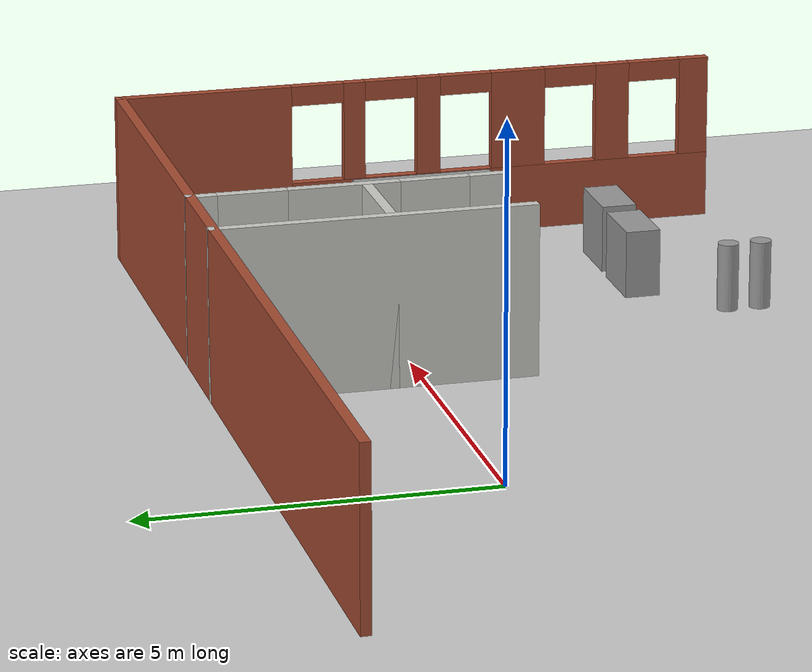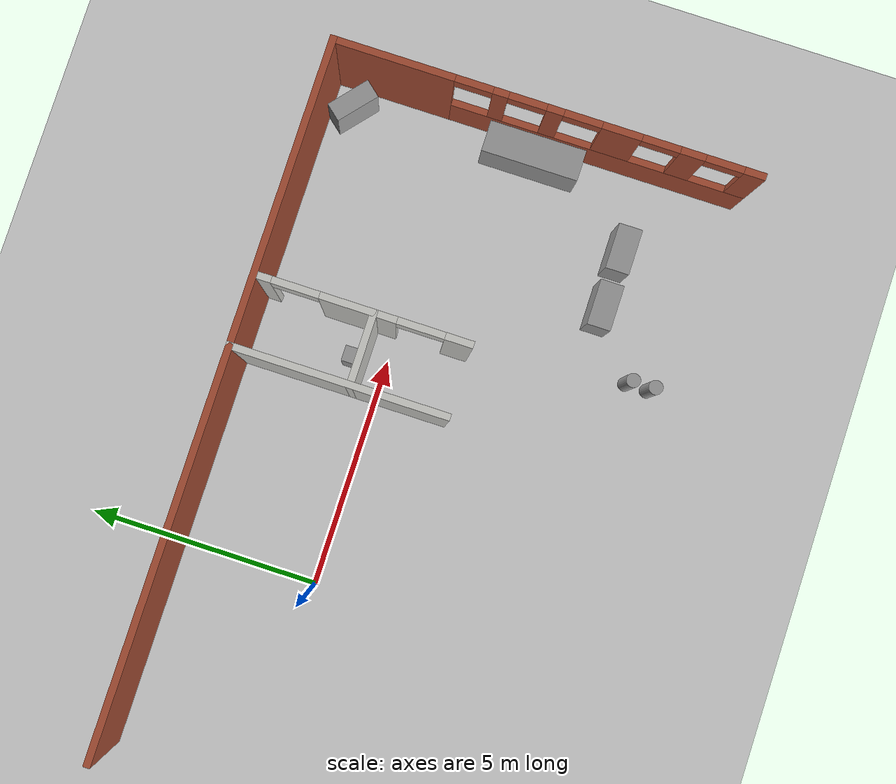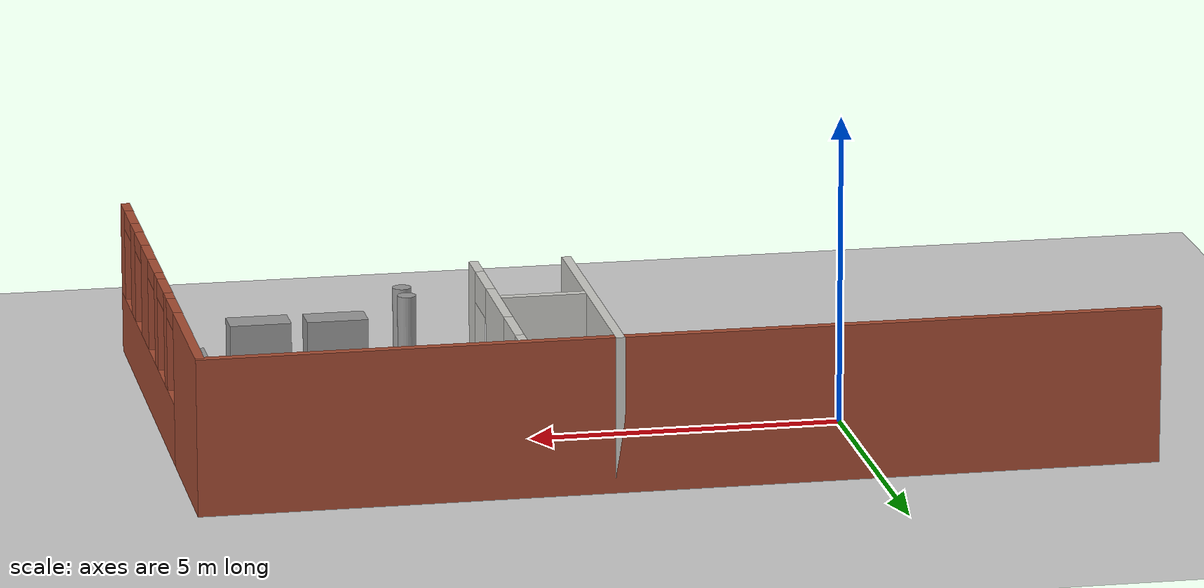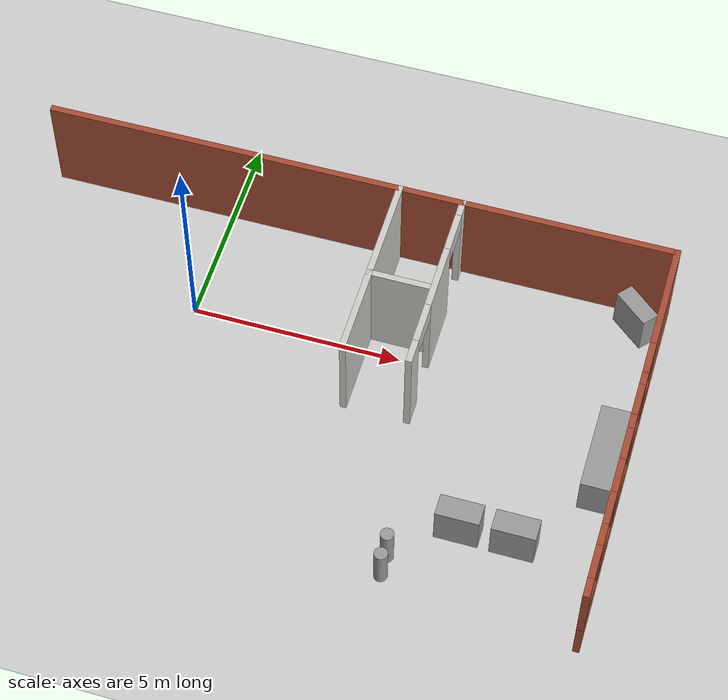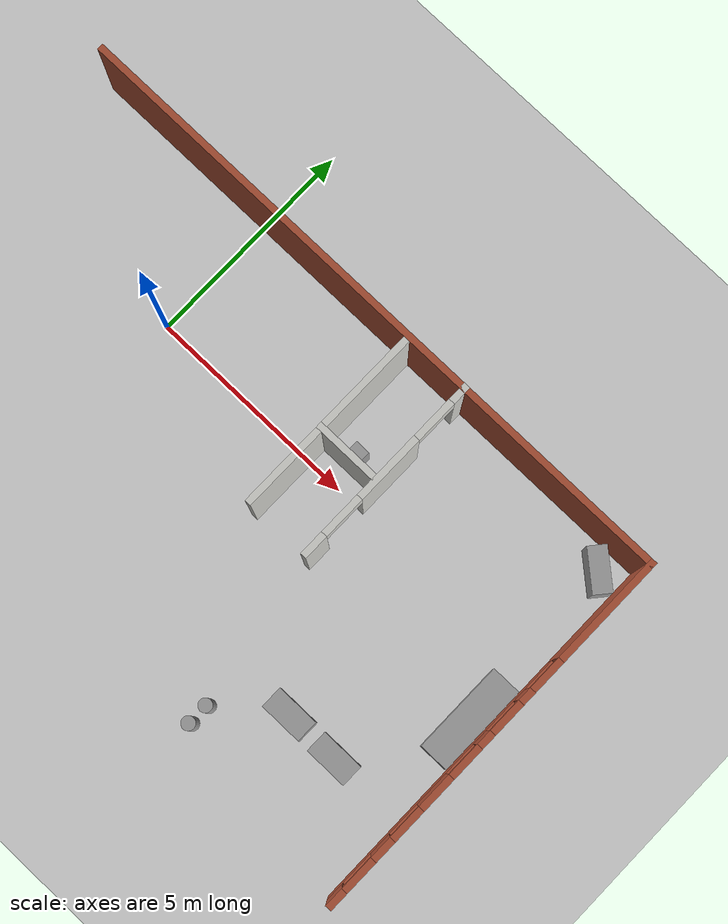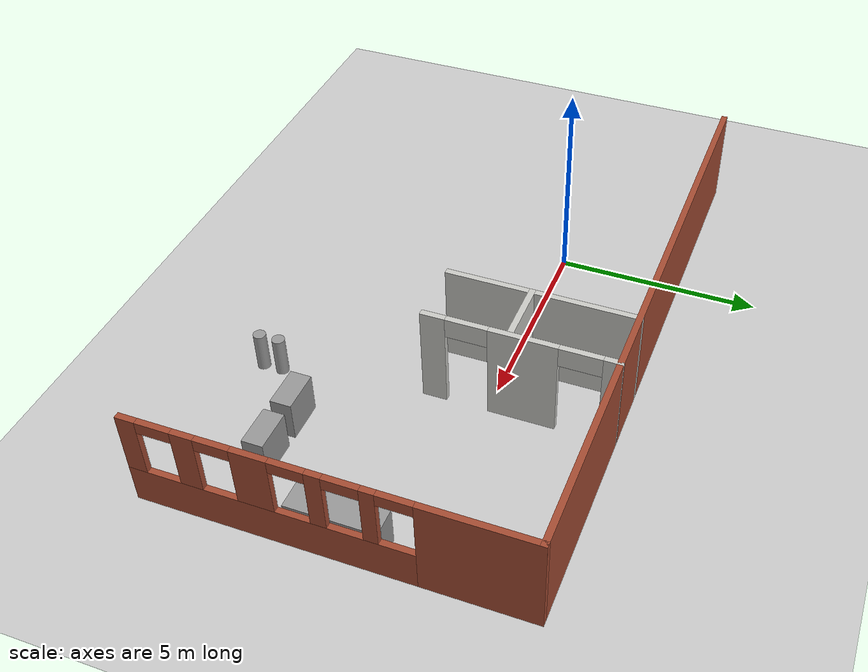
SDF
<sdf version="1.6">
 <world name="default">
  <model name="ground_plane">
   <static>1</static>
   <link name="link">
    <collision name="collision">
     <geometry><plane><normal>0 0 1</normal><size>100 100</size></plane></geometry>
     <surface><friction><ode><mu>100</mu><mu2>50</mu2></ode></friction></surface>
    </collision>
    <visual name="visual">
     <cast_shadows>0</cast_shadows>
     <geometry><plane><normal>0 0 1</normal><size>100 100</size></plane></geometry>
     <material>
      <script><uri>file://media/materials/scripts/gazebo.material</uri><name>Gazebo/Grey</name></script>
     </material>
    </visual>
   </link>
  </model>
  <model name="building">
   <link name="Wall_0">
    <pose>0 4.5 0 0 -0 0</pose>
    <visual name="Wall_0_Visual">
     <pose>0 0 1.25 0 -0 0</pose>
     <geometry><box><size>15.15 0.15 2.5</size></box></geometry>
     <material>
      <script><uri>file://media/materials/scripts/gazebo.material</uri><name>Gazebo/Bricks</name></script>
      <ambient>0.996078 0.47451 0.0196078 1</ambient>
      <shader type="pixel"/>
      <diffuse>1 1 1 1</diffuse>
      <specular>0.2 0.2 0.2 1</specular>
      <emissive>0 0 0 1</emissive>
     </material>
     <meta><layer>0</layer></meta>
    </visual>
    <collision name="Wall_0_Collision">
     <pose>0 0 1.25 0 -0 0</pose>
     <geometry><box><size>15.15 0.15 2.5</size></box></geometry>
     <surface>
      <friction>
       <ode><mu>1</mu><mu2>1</mu2><fdir1>0 0 0</fdir1><slip1>0</slip1><slip2>0</slip2></ode>
       <torsional>
        <coefficient>1</coefficient>
        <patch_radius>0</patch_radius>
        <surface_radius>0</surface_radius>
        <use_patch_radius>1</use_patch_radius>
        <ode><slip>0</slip></ode>
       </torsional>
      </friction>
      <bounce><restitution_coefficient>0</restitution_coefficient><threshold>1e+06</threshold></bounce>
      <contact>
       <collide_without_contact>0</collide_without_contact>
       <collide_without_contact_bitmask>1</collide_without_contact_bitmask>
       <collide_bitmask>1</collide_bitmask>
       <ode>
        <soft_cfm>0</soft_cfm>
        <soft_erp>0.2</soft_erp>
        <kp>1e+13</kp>
        <kd>1</kd>
        <max_vel>0.01</max_vel>
        <min_depth>0</min_depth>
       </ode>
       <bullet>
        <split_impulse>1</split_impulse>
        <split_impulse_penetration_threshold>-0.01</split_impulse_penetration_threshold>
        <soft_cfm>0</soft_cfm>
        <soft_erp>0.2</soft_erp>
        <kp>1e+13</kp>
        <kd>1</kd>
       </bullet>
      </contact>
     </surface>
    </collision>
   </link>
   <link name="Wall_2">
    <pose>7.5 0 0 0 0 -1.5708</pose>
    <visual name="Wall_2_Visual_1">
     <pose>1.32605 0 0.5 0 -0 0</pose>
     <geometry><box><size>6.4979 0.15 1</size></box></geometry>
     <material>
      <script><uri>file://media/materials/scripts/gazebo.material</uri><name>Gazebo/Bricks</name></script>
      <ambient>0.996078 0.47451 0.0196078 1</ambient>
      <shader type="pixel"/>
      <diffuse>1 1 1 1</diffuse>
      <specular>0.2 0.2 0.2 1</specular>
      <emissive>0 0 0 1</emissive>
     </material>
     <meta><layer>0</layer></meta>
    </visual>
    <visual name="Wall_2_Visual_6">
     <pose>4.34943 0 1.75 0 -0 0</pose>
     <geometry><box><size>0.451131 0.15 1.5</size></box></geometry>
     <material>
      <script><uri>file://media/materials/scripts/gazebo.material</uri><name>Gazebo/Bricks</name></script>
      <ambient>0.996078 0.47451 0.0196078 1</ambient>
      <shader type="pixel"/>
      <diffuse>1 1 1 1</diffuse>
      <specular>0.2 0.2 0.2 1</specular>
      <emissive>0 0 0 1</emissive>
     </material>
     <meta><layer>0</layer></meta>
    </visual>
    <visual name="Wall_2_Visual_9">
     <pose>0.765409 0 2.35 0 -0 0</pose>
     <geometry><box><size>0.8 0.15 0.3</size></box></geometry>
     <material>
      <script><uri>file://media/materials/scripts/gazebo.material</uri><name>Gazebo/Bricks</name></script>
      <ambient>0.996078 0.47451 0.0196078 1</ambient>
      <shader type="pixel"/>
      <diffuse>1 1 1 1</diffuse>
      <specular>0.2 0.2 0.2 1</specular>
      <emissive>0 0 0 1</emissive>
     </material>
     <meta><layer>0</layer></meta>
    </visual>
    <visual name="Wall_2_Visual_8">
     <pose>-0.395093 0 2.35 0 -0 0</pose>
     <geometry><box><size>0.8 0.15 0.3</size></box></geometry>
     <material>
      <script><uri>file://media/materials/scripts/gazebo.material</uri><name>Gazebo/Bricks</name></script>
      <ambient>0.996078 0.47451 0.0196078 1</ambient>
      <shader type="pixel"/>
      <diffuse>1 1 1 1</diffuse>
      <specular>0.2 0.2 0.2 1</specular>
      <emissive>0 0 0 1</emissive>
     </material>
     <meta><layer>0</layer></meta>
    </visual>
    <visual name="Wall_2_Visual_10">
     <pose>2.39992 0 2.35 0 -0 0</pose>
     <geometry><box><size>0.8 0.15 0.3</size></box></geometry>
     <material>
      <script><uri>file://media/materials/scripts/gazebo.material</uri><name>Gazebo/Bricks</name></script>
      <ambient>0.996078 0.47451 0.0196078 1</ambient>
      <shader type="pixel"/>
      <diffuse>1 1 1 1</diffuse>
      <specular>0.2 0.2 0.2 1</specular>
      <emissive>0 0 0 1</emissive>
     </material>
     <meta><layer>0</layer></meta>
    </visual>
    <visual name="Wall_2_Visual_5">
     <pose>3.06189 0 1.75 0 -0 0</pose>
     <geometry><box><size>0.523952 0.15 1.5</size></box></geometry>
     <material>
      <script><uri>file://media/materials/scripts/gazebo.material</uri><name>Gazebo/Bricks</name></script>
      <ambient>0.996078 0.47451 0.0196078 1</ambient>
      <shader type="pixel"/>
      <diffuse>1 1 1 1</diffuse>
      <specular>0.2 0.2 0.2 1</specular>
      <emissive>0 0 0 1</emissive>
     </material>
     <meta><layer>0</layer></meta>
    </visual>
    <visual name="Wall_2_Visual_4">
     <pose>1.58266 0 1.75 0 -0 0</pose>
     <geometry><box><size>0.834509 0.15 1.5</size></box></geometry>
     <material>
      <script><uri>file://media/materials/scripts/gazebo.material</uri><name>Gazebo/Bricks</name></script>
      <ambient>0.996078 0.47451 0.0196078 1</ambient>
      <shader type="pixel"/>
      <diffuse>1 1 1 1</diffuse>
      <specular>0.2 0.2 0.2 1</specular>
      <emissive>0 0 0 1</emissive>
     </material>
     <meta><layer>0</layer></meta>
    </visual>
    <visual name="Wall_2_Visual_7">
     <pose>-1.5229 0 2.35 0 -0 0</pose>
     <geometry><box><size>0.8 0.15 0.3</size></box></geometry>
     <material>
      <script><uri>file://media/materials/scripts/gazebo.material</uri><name>Gazebo/Bricks</name></script>
      <ambient>0.996078 0.47451 0.0196078 1</ambient>
      <shader type="pixel"/>
      <diffuse>1 1 1 1</diffuse>
      <specular>0.2 0.2 0.2 1</specular>
      <emissive>0 0 0 1</emissive>
     </material>
     <meta><layer>0</layer></meta>
    </visual>
    <visual name="Wall_2_Visual_0">
     <pose>-3.24895 0 1.25 0 -0 0</pose>
     <geometry><box><size>2.6521 0.15 2.5</size></box></geometry>
     <material>
      <script><uri>file://media/materials/scripts/gazebo.material</uri><name>Gazebo/Bricks</name></script>
      <ambient>0.996078 0.47451 0.0196078 1</ambient>
      <shader type="pixel"/>
      <diffuse>1 1 1 1</diffuse>
      <specular>0.2 0.2 0.2 1</specular>
      <emissive>0 0 0 1</emissive>
     </material>
     <meta><layer>0</layer></meta>
    </visual>
    <visual name="Wall_2_Visual_3">
     <pose>0.185158 0 1.75 0 -0 0</pose>
     <geometry><box><size>0.360501 0.15 1.5</size></box></geometry>
     <material>
      <script><uri>file://media/materials/scripts/gazebo.material</uri><name>Gazebo/Bricks</name></script>
      <ambient>0.996078 0.47451 0.0196078 1</ambient>
      <shader type="pixel"/>
      <diffuse>1 1 1 1</diffuse>
      <specular>0.2 0.2 0.2 1</specular>
      <emissive>0 0 0 1</emissive>
     </material>
     <meta><layer>0</layer></meta>
    </visual>
    <visual name="Wall_2_Visual_2">
     <pose>-0.958999 0 1.75 0 -0 0</pose>
     <geometry><box><size>0.327811 0.15 1.5</size></box></geometry>
     <material>
      <script><uri>file://media/materials/scripts/gazebo.material</uri><name>Gazebo/Bricks</name></script>
      <ambient>0.996078 0.47451 0.0196078 1</ambient>
      <shader type="pixel"/>
      <diffuse>1 1 1 1</diffuse>
      <specular>0.2 0.2 0.2 1</specular>
      <emissive>0 0 0 1</emissive>
     </material>
     <meta><layer>0</layer></meta>
    </visual>
    <visual name="Wall_2_Visual_11">
     <pose>3.72387 0 2.35 0 -0 0</pose>
     <geometry><box><size>0.8 0.15 0.3</size></box></geometry>
     <material>
      <script><uri>file://media/materials/scripts/gazebo.material</uri><name>Gazebo/Bricks</name></script>
      <ambient>0.996078 0.47451 0.0196078 1</ambient>
      <shader type="pixel"/>
      <diffuse>1 1 1 1</diffuse>
      <specular>0.2 0.2 0.2 1</specular>
      <emissive>0 0 0 1</emissive>
     </material>
     <meta><layer>0</layer></meta>
    </visual>
    <collision name="Wall_2_Collision_5">
     <pose>3.06189 0 1.75 0 -0 0</pose>
     <geometry><box><size>0.523952 0.15 1.5</size></box></geometry>
     <surface>
      <friction>
       <ode><mu>1</mu><mu2>1</mu2><fdir1>0 0 0</fdir1><slip1>0</slip1><slip2>0</slip2></ode>
       <torsional>
        <coefficient>1</coefficient>
        <patch_radius>0</patch_radius>
        <surface_radius>0</surface_radius>
        <use_patch_radius>1</use_patch_radius>
        <ode><slip>0</slip></ode>
       </torsional>
      </friction>
      <bounce><restitution_coefficient>0</restitution_coefficient><threshold>1e+06</threshold></bounce>
      <contact>
       <collide_without_contact>0</collide_without_contact>
       <collide_without_contact_bitmask>1</collide_without_contact_bitmask>
       <collide_bitmask>1</collide_bitmask>
       <ode>
        <soft_cfm>0</soft_cfm>
        <soft_erp>0.2</soft_erp>
        <kp>1e+13</kp>
        <kd>1</kd>
        <max_vel>0.01</max_vel>
        <min_depth>0</min_depth>
       </ode>
       <bullet>
        <split_impulse>1</split_impulse>
        <split_impulse_penetration_threshold>-0.01</split_impulse_penetration_threshold>
        <soft_cfm>0</soft_cfm>
        <soft_erp>0.2</soft_erp>
        <kp>1e+13</kp>
        <kd>1</kd>
       </bullet>
      </contact>
     </surface>
    </collision>
    <collision name="Wall_2_Collision_9">
     <pose>0.765409 0 2.35 0 -0 0</pose>
     <geometry><box><size>0.8 0.15 0.3</size></box></geometry>
     <surface>
      <friction>
       <ode><mu>1</mu><mu2>1</mu2><fdir1>0 0 0</fdir1><slip1>0</slip1><slip2>0</slip2></ode>
       <torsional>
        <coefficient>1</coefficient>
        <patch_radius>0</patch_radius>
        <surface_radius>0</surface_radius>
        <use_patch_radius>1</use_patch_radius>
        <ode><slip>0</slip></ode>
       </torsional>
      </friction>
      <bounce><restitution_coefficient>0</restitution_coefficient><threshold>1e+06</threshold></bounce>
      <contact>
       <collide_without_contact>0</collide_without_contact>
       <collide_without_contact_bitmask>1</collide_without_contact_bitmask>
       <collide_bitmask>1</collide_bitmask>
       <ode>
        <soft_cfm>0</soft_cfm>
        <soft_erp>0.2</soft_erp>
        <kp>1e+13</kp>
        <kd>1</kd>
        <max_vel>0.01</max_vel>
        <min_depth>0</min_depth>
       </ode>
       <bullet>
        <split_impulse>1</split_impulse>
        <split_impulse_penetration_threshold>-0.01</split_impulse_penetration_threshold>
        <soft_cfm>0</soft_cfm>
        <soft_erp>0.2</soft_erp>
        <kp>1e+13</kp>
        <kd>1</kd>
       </bullet>
      </contact>
     </surface>
    </collision>
    <collision name="Wall_2_Collision_8">
     <pose>-0.395093 0 2.35 0 -0 0</pose>
     <geometry><box><size>0.8 0.15 0.3</size></box></geometry>
     <surface>
      <friction>
       <ode><mu>1</mu><mu2>1</mu2><fdir1>0 0 0</fdir1><slip1>0</slip1><slip2>0</slip2></ode>
       <torsional>
        <coefficient>1</coefficient>
        <patch_radius>0</patch_radius>
        <surface_radius>0</surface_radius>
        <use_patch_radius>1</use_patch_radius>
        <ode><slip>0</slip></ode>
       </torsional>
      </friction>
      <bounce><restitution_coefficient>0</restitution_coefficient><threshold>1e+06</threshold></bounce>
      <contact>
       <collide_without_contact>0</collide_without_contact>
       <collide_without_contact_bitmask>1</collide_without_contact_bitmask>
       <collide_bitmask>1</collide_bitmask>
       <ode>
        <soft_cfm>0</soft_cfm>
        <soft_erp>0.2</soft_erp>
        <kp>1e+13</kp>
        <kd>1</kd>
        <max_vel>0.01</max_vel>
        <min_depth>0</min_depth>
       </ode>
       <bullet>
        <split_impulse>1</split_impulse>
        <split_impulse_penetration_threshold>-0.01</split_impulse_penetration_threshold>
        <soft_cfm>0</soft_cfm>
        <soft_erp>0.2</soft_erp>
        <kp>1e+13</kp>
        <kd>1</kd>
       </bullet>
      </contact>
     </surface>
    </collision>
    <collision name="Wall_2_Collision_0">
     <pose>-3.24895 0 1.25 0 -0 0</pose>
     <geometry><box><size>2.6521 0.15 2.5</size></box></geometry>
     <surface>
      <friction>
       <ode><mu>1</mu><mu2>1</mu2><fdir1>0 0 0</fdir1><slip1>0</slip1><slip2>0</slip2></ode>
       <torsional>
        <coefficient>1</coefficient>
        <patch_radius>0</patch_radius>
        <surface_radius>0</surface_radius>
        <use_patch_radius>1</use_patch_radius>
        <ode><slip>0</slip></ode>
       </torsional>
      </friction>
      <bounce><restitution_coefficient>0</restitution_coefficient><threshold>1e+06</threshold></bounce>
      <contact>
       <collide_without_contact>0</collide_without_contact>
       <collide_without_contact_bitmask>1</collide_without_contact_bitmask>
       <collide_bitmask>1</collide_bitmask>
       <ode>
        <soft_cfm>0</soft_cfm>
        <soft_erp>0.2</soft_erp>
        <kp>1e+13</kp>
        <kd>1</kd>
        <max_vel>0.01</max_vel>
        <min_depth>0</min_depth>
       </ode>
       <bullet>
        <split_impulse>1</split_impulse>
        <split_impulse_penetration_threshold>-0.01</split_impulse_penetration_threshold>
        <soft_cfm>0</soft_cfm>
        <soft_erp>0.2</soft_erp>
        <kp>1e+13</kp>
        <kd>1</kd>
       </bullet>
      </contact>
     </surface>
    </collision>
    <collision name="Wall_2_Collision_6">
     <pose>4.34943 0 1.75 0 -0 0</pose>
     <geometry><box><size>0.451131 0.15 1.5</size></box></geometry>
     <surface>
      <friction>
       <ode><mu>1</mu><mu2>1</mu2><fdir1>0 0 0</fdir1><slip1>0</slip1><slip2>0</slip2></ode>
       <torsional>
        <coefficient>1</coefficient>
        <patch_radius>0</patch_radius>
        <surface_radius>0</surface_radius>
        <use_patch_radius>1</use_patch_radius>
        <ode><slip>0</slip></ode>
       </torsional>
      </friction>
      <bounce><restitution_coefficient>0</restitution_coefficient><threshold>1e+06</threshold></bounce>
      <contact>
       <collide_without_contact>0</collide_without_contact>
       <collide_without_contact_bitmask>1</collide_without_contact_bitmask>
       <collide_bitmask>1</collide_bitmask>
       <ode>
        <soft_cfm>0</soft_cfm>
        <soft_erp>0.2</soft_erp>
        <kp>1e+13</kp>
        <kd>1</kd>
        <max_vel>0.01</max_vel>
        <min_depth>0</min_depth>
       </ode>
       <bullet>
        <split_impulse>1</split_impulse>
        <split_impulse_penetration_threshold>-0.01</split_impulse_penetration_threshold>
        <soft_cfm>0</soft_cfm>
        <soft_erp>0.2</soft_erp>
        <kp>1e+13</kp>
        <kd>1</kd>
       </bullet>
      </contact>
     </surface>
    </collision>
    <collision name="Wall_2_Collision_7">
     <pose>-1.5229 0 2.35 0 -0 0</pose>
     <geometry><box><size>0.8 0.15 0.3</size></box></geometry>
     <surface>
      <friction>
       <ode><mu>1</mu><mu2>1</mu2><fdir1>0 0 0</fdir1><slip1>0</slip1><slip2>0</slip2></ode>
       <torsional>
        <coefficient>1</coefficient>
        <patch_radius>0</patch_radius>
        <surface_radius>0</surface_radius>
        <use_patch_radius>1</use_patch_radius>
        <ode><slip>0</slip></ode>
       </torsional>
      </friction>
      <bounce><restitution_coefficient>0</restitution_coefficient><threshold>1e+06</threshold></bounce>
      <contact>
       <collide_without_contact>0</collide_without_contact>
       <collide_without_contact_bitmask>1</collide_without_contact_bitmask>
       <collide_bitmask>1</collide_bitmask>
       <ode>
        <soft_cfm>0</soft_cfm>
        <soft_erp>0.2</soft_erp>
        <kp>1e+13</kp>
        <kd>1</kd>
        <max_vel>0.01</max_vel>
        <min_depth>0</min_depth>
       </ode>
       <bullet>
        <split_impulse>1</split_impulse>
        <split_impulse_penetration_threshold>-0.01</split_impulse_penetration_threshold>
        <soft_cfm>0</soft_cfm>
        <soft_erp>0.2</soft_erp>
        <kp>1e+13</kp>
        <kd>1</kd>
       </bullet>
      </contact>
     </surface>
    </collision>
    <collision name="Wall_2_Collision_11">
     <pose>3.72387 0 2.35 0 -0 0</pose>
     <geometry><box><size>0.8 0.15 0.3</size></box></geometry>
     <surface>
      <friction>
       <ode><mu>1</mu><mu2>1</mu2><fdir1>0 0 0</fdir1><slip1>0</slip1><slip2>0</slip2></ode>
       <torsional>
        <coefficient>1</coefficient>
        <patch_radius>0</patch_radius>
        <surface_radius>0</surface_radius>
        <use_patch_radius>1</use_patch_radius>
        <ode><slip>0</slip></ode>
       </torsional>
      </friction>
      <bounce><restitution_coefficient>0</restitution_coefficient><threshold>1e+06</threshold></bounce>
      <contact>
       <collide_without_contact>0</collide_without_contact>
       <collide_without_contact_bitmask>1</collide_without_contact_bitmask>
       <collide_bitmask>1</collide_bitmask>
       <ode>
        <soft_cfm>0</soft_cfm>
        <soft_erp>0.2</soft_erp>
        <kp>1e+13</kp>
        <kd>1</kd>
        <max_vel>0.01</max_vel>
        <min_depth>0</min_depth>
       </ode>
       <bullet>
        <split_impulse>1</split_impulse>
        <split_impulse_penetration_threshold>-0.01</split_impulse_penetration_threshold>
        <soft_cfm>0</soft_cfm>
        <soft_erp>0.2</soft_erp>
        <kp>1e+13</kp>
        <kd>1</kd>
       </bullet>
      </contact>
     </surface>
    </collision>
    <collision name="Wall_2_Collision_4">
     <pose>1.58266 0 1.75 0 -0 0</pose>
     <geometry><box><size>0.834509 0.15 1.5</size></box></geometry>
     <surface>
      <friction>
       <ode><mu>1</mu><mu2>1</mu2><fdir1>0 0 0</fdir1><slip1>0</slip1><slip2>0</slip2></ode>
       <torsional>
        <coefficient>1</coefficient>
        <patch_radius>0</patch_radius>
        <surface_radius>0</surface_radius>
        <use_patch_radius>1</use_patch_radius>
        <ode><slip>0</slip></ode>
       </torsional>
      </friction>
      <bounce><restitution_coefficient>0</restitution_coefficient><threshold>1e+06</threshold></bounce>
      <contact>
       <collide_without_contact>0</collide_without_contact>
       <collide_without_contact_bitmask>1</collide_without_contact_bitmask>
       <collide_bitmask>1</collide_bitmask>
       <ode>
        <soft_cfm>0</soft_cfm>
        <soft_erp>0.2</soft_erp>
        <kp>1e+13</kp>
        <kd>1</kd>
        <max_vel>0.01</max_vel>
        <min_depth>0</min_depth>
       </ode>
       <bullet>
        <split_impulse>1</split_impulse>
        <split_impulse_penetration_threshold>-0.01</split_impulse_penetration_threshold>
        <soft_cfm>0</soft_cfm>
        <soft_erp>0.2</soft_erp>
        <kp>1e+13</kp>
        <kd>1</kd>
       </bullet>
      </contact>
     </surface>
    </collision>
    <collision name="Wall_2_Collision_10">
     <pose>2.39992 0 2.35 0 -0 0</pose>
     <geometry><box><size>0.8 0.15 0.3</size></box></geometry>
     <surface>
      <friction>
       <ode><mu>1</mu><mu2>1</mu2><fdir1>0 0 0</fdir1><slip1>0</slip1><slip2>0</slip2></ode>
       <torsional>
        <coefficient>1</coefficient>
        <patch_radius>0</patch_radius>
        <surface_radius>0</surface_radius>
        <use_patch_radius>1</use_patch_radius>
        <ode><slip>0</slip></ode>
       </torsional>
      </friction>
      <bounce><restitution_coefficient>0</restitution_coefficient><threshold>1e+06</threshold></bounce>
      <contact>
       <collide_without_contact>0</collide_without_contact>
       <collide_without_contact_bitmask>1</collide_without_contact_bitmask>
       <collide_bitmask>1</collide_bitmask>
       <ode>
        <soft_cfm>0</soft_cfm>
        <soft_erp>0.2</soft_erp>
        <kp>1e+13</kp>
        <kd>1</kd>
        <max_vel>0.01</max_vel>
        <min_depth>0</min_depth>
       </ode>
       <bullet>
        <split_impulse>1</split_impulse>
        <split_impulse_penetration_threshold>-0.01</split_impulse_penetration_threshold>
        <soft_cfm>0</soft_cfm>
        <soft_erp>0.2</soft_erp>
        <kp>1e+13</kp>
        <kd>1</kd>
       </bullet>
      </contact>
     </surface>
    </collision>
    <collision name="Wall_2_Collision_1">
     <pose>1.32605 0 0.5 0 -0 0</pose>
     <geometry><box><size>6.4979 0.15 1</size></box></geometry>
     <surface>
      <friction>
       <ode><mu>1</mu><mu2>1</mu2><fdir1>0 0 0</fdir1><slip1>0</slip1><slip2>0</slip2></ode>
       <torsional>
        <coefficient>1</coefficient>
        <patch_radius>0</patch_radius>
        <surface_radius>0</surface_radius>
        <use_patch_radius>1</use_patch_radius>
        <ode><slip>0</slip></ode>
       </torsional>
      </friction>
      <bounce><restitution_coefficient>0</restitution_coefficient><threshold>1e+06</threshold></bounce>
      <contact>
       <collide_without_contact>0</collide_without_contact>
       <collide_without_contact_bitmask>1</collide_without_contact_bitmask>
       <collide_bitmask>1</collide_bitmask>
       <ode>
        <soft_cfm>0</soft_cfm>
        <soft_erp>0.2</soft_erp>
        <kp>1e+13</kp>
        <kd>1</kd>
        <max_vel>0.01</max_vel>
        <min_depth>0</min_depth>
       </ode>
       <bullet>
        <split_impulse>1</split_impulse>
        <split_impulse_penetration_threshold>-0.01</split_impulse_penetration_threshold>
        <soft_cfm>0</soft_cfm>
        <soft_erp>0.2</soft_erp>
        <kp>1e+13</kp>
        <kd>1</kd>
       </bullet>
      </contact>
     </surface>
    </collision>
    <collision name="Wall_2_Collision_3">
     <pose>0.185158 0 1.75 0 -0 0</pose>
     <geometry><box><size>0.360501 0.15 1.5</size></box></geometry>
     <surface>
      <friction>
       <ode><mu>1</mu><mu2>1</mu2><fdir1>0 0 0</fdir1><slip1>0</slip1><slip2>0</slip2></ode>
       <torsional>
        <coefficient>1</coefficient>
        <patch_radius>0</patch_radius>
        <surface_radius>0</surface_radius>
        <use_patch_radius>1</use_patch_radius>
        <ode><slip>0</slip></ode>
       </torsional>
      </friction>
      <bounce><restitution_coefficient>0</restitution_coefficient><threshold>1e+06</threshold></bounce>
      <contact>
       <collide_without_contact>0</collide_without_contact>
       <collide_without_contact_bitmask>1</collide_without_contact_bitmask>
       <collide_bitmask>1</collide_bitmask>
       <ode>
        <soft_cfm>0</soft_cfm>
        <soft_erp>0.2</soft_erp>
        <kp>1e+13</kp>
        <kd>1</kd>
        <max_vel>0.01</max_vel>
        <min_depth>0</min_depth>
       </ode>
       <bullet>
        <split_impulse>1</split_impulse>
        <split_impulse_penetration_threshold>-0.01</split_impulse_penetration_threshold>
        <soft_cfm>0</soft_cfm>
        <soft_erp>0.2</soft_erp>
        <kp>1e+13</kp>
        <kd>1</kd>
       </bullet>
      </contact>
     </surface>
    </collision>
    <collision name="Wall_2_Collision_2">
     <pose>-0.958999 0 1.75 0 -0 0</pose>
     <geometry><box><size>0.327811 0.15 1.5</size></box></geometry>
     <surface>
      <friction>
       <ode><mu>1</mu><mu2>1</mu2><fdir1>0 0 0</fdir1><slip1>0</slip1><slip2>0</slip2></ode>
       <torsional>
        <coefficient>1</coefficient>
        <patch_radius>0</patch_radius>
        <surface_radius>0</surface_radius>
        <use_patch_radius>1</use_patch_radius>
        <ode><slip>0</slip></ode>
       </torsional>
      </friction>
      <bounce><restitution_coefficient>0</restitution_coefficient><threshold>1e+06</threshold></bounce>
      <contact>
       <collide_without_contact>0</collide_without_contact>
       <collide_without_contact_bitmask>1</collide_without_contact_bitmask>
       <collide_bitmask>1</collide_bitmask>
       <ode>
        <soft_cfm>0</soft_cfm>
        <soft_erp>0.2</soft_erp>
        <kp>1e+13</kp>
        <kd>1</kd>
        <max_vel>0.01</max_vel>
        <min_depth>0</min_depth>
       </ode>
       <bullet>
        <split_impulse>1</split_impulse>
        <split_impulse_penetration_threshold>-0.01</split_impulse_penetration_threshold>
        <soft_cfm>0</soft_cfm>
        <soft_erp>0.2</soft_erp>
        <kp>1e+13</kp>
        <kd>1</kd>
       </bullet>
      </contact>
     </surface>
    </collision>
   </link>
   <link name="Wall_20">
    <pose>2.5 2.25 0 0 -0 1.5708</pose>
    <visual name="Wall_20_Visual_4">
     <pose>1.38142 0 2.25 0 -0 0</pose>
     <geometry><box><size>1 0.15 0.5</size></box></geometry>
     <material>
      <script><uri>file://media/materials/scripts/gazebo.material</uri><name>Gazebo/CeilingTiled</name></script>
      <ambient>1 0.764706 0.305882 1</ambient>
      <shader type="pixel"/>
      <diffuse>1 1 1 1</diffuse>
      <specular>0 0 0 1</specular>
      <emissive>0 0 0 1</emissive>
     </material>
     <meta><layer>0</layer></meta>
    </visual>
    <visual name="Wall_20_Visual_2">
     <pose>2.10321 0 1.25 0 -0 0</pose>
     <geometry><box><size>0.443579 0.15 2.5</size></box></geometry>
     <material>
      <script><uri>file://media/materials/scripts/gazebo.material</uri><name>Gazebo/CeilingTiled</name></script>
      <ambient>1 0.764706 0.305882 1</ambient>
      <shader type="pixel"/>
      <diffuse>1 1 1 1</diffuse>
      <specular>0 0 0 1</specular>
      <emissive>0 0 0 1</emissive>
     </material>
     <meta><layer>0</layer></meta>
    </visual>
    <visual name="Wall_20_Visual_3">
     <pose>-1.23379 0 2.25 0 -0 0</pose>
     <geometry><box><size>1 0.15 0.5</size></box></geometry>
     <material>
      <script><uri>file://media/materials/scripts/gazebo.material</uri><name>Gazebo/CeilingTiled</name></script>
      <ambient>1 0.764706 0.305882 1</ambient>
      <shader type="pixel"/>
      <diffuse>1 1 1 1</diffuse>
      <specular>0 0 0 1</specular>
      <emissive>0 0 0 1</emissive>
     </material>
     <meta><layer>0</layer></meta>
    </visual>
    <visual name="Wall_20_Visual_0">
     <pose>-2.0294 0 1.25 0 -0 0</pose>
     <geometry><box><size>0.591206 0.15 2.5</size></box></geometry>
     <material>
      <script><uri>file://media/materials/scripts/gazebo.material</uri><name>Gazebo/CeilingTiled</name></script>
      <ambient>1 0.764706 0.305882 1</ambient>
      <shader type="pixel"/>
      <diffuse>1 1 1 1</diffuse>
      <specular>0 0 0 1</specular>
      <emissive>0 0 0 1</emissive>
     </material>
     <meta><layer>0</layer></meta>
    </visual>
    <visual name="Wall_20_Visual_1">
     <pose>0.073813 0 1.25 0 -0 0</pose>
     <geometry><box><size>1.61521 0.15 2.5</size></box></geometry>
     <material>
      <script><uri>file://media/materials/scripts/gazebo.material</uri><name>Gazebo/CeilingTiled</name></script>
      <ambient>1 0.764706 0.305882 1</ambient>
      <shader type="pixel"/>
      <diffuse>1 1 1 1</diffuse>
      <specular>0 0 0 1</specular>
      <emissive>0 0 0 1</emissive>
     </material>
     <meta><layer>0</layer></meta>
    </visual>
    <collision name="Wall_20_Collision_4">
     <pose>1.38142 0 2.25 0 -0 0</pose>
     <geometry><box><size>1 0.15 0.5</size></box></geometry>
     <surface>
      <friction>
       <ode><mu>1</mu><mu2>1</mu2><fdir1>0 0 0</fdir1><slip1>0</slip1><slip2>0</slip2></ode>
       <torsional>
        <coefficient>1</coefficient>
        <patch_radius>0</patch_radius>
        <surface_radius>0</surface_radius>
        <use_patch_radius>1</use_patch_radius>
        <ode><slip>0</slip></ode>
       </torsional>
      </friction>
      <bounce><restitution_coefficient>0</restitution_coefficient><threshold>1e+06</threshold></bounce>
      <contact>
       <collide_without_contact>0</collide_without_contact>
       <collide_without_contact_bitmask>1</collide_without_contact_bitmask>
       <collide_bitmask>1</collide_bitmask>
       <ode>
        <soft_cfm>0</soft_cfm>
        <soft_erp>0.2</soft_erp>
        <kp>1e+13</kp>
        <kd>1</kd>
        <max_vel>0.01</max_vel>
        <min_depth>0</min_depth>
       </ode>
       <bullet>
        <split_impulse>1</split_impulse>
        <split_impulse_penetration_threshold>-0.01</split_impulse_penetration_threshold>
        <soft_cfm>0</soft_cfm>
        <soft_erp>0.2</soft_erp>
        <kp>1e+13</kp>
        <kd>1</kd>
       </bullet>
      </contact>
     </surface>
    </collision>
    <collision name="Wall_20_Collision_3">
     <pose>-1.23379 0 2.25 0 -0 0</pose>
     <geometry><box><size>1 0.15 0.5</size></box></geometry>
     <surface>
      <friction>
       <ode><mu>1</mu><mu2>1</mu2><fdir1>0 0 0</fdir1><slip1>0</slip1><slip2>0</slip2></ode>
       <torsional>
        <coefficient>1</coefficient>
        <patch_radius>0</patch_radius>
        <surface_radius>0</surface_radius>
        <use_patch_radius>1</use_patch_radius>
        <ode><slip>0</slip></ode>
       </torsional>
      </friction>
      <bounce><restitution_coefficient>0</restitution_coefficient><threshold>1e+06</threshold></bounce>
      <contact>
       <collide_without_contact>0</collide_without_contact>
       <collide_without_contact_bitmask>1</collide_without_contact_bitmask>
       <collide_bitmask>1</collide_bitmask>
       <ode>
        <soft_cfm>0</soft_cfm>
        <soft_erp>0.2</soft_erp>
        <kp>1e+13</kp>
        <kd>1</kd>
        <max_vel>0.01</max_vel>
        <min_depth>0</min_depth>
       </ode>
       <bullet>
        <split_impulse>1</split_impulse>
        <split_impulse_penetration_threshold>-0.01</split_impulse_penetration_threshold>
        <soft_cfm>0</soft_cfm>
        <soft_erp>0.2</soft_erp>
        <kp>1e+13</kp>
        <kd>1</kd>
       </bullet>
      </contact>
     </surface>
    </collision>
    <collision name="Wall_20_Collision_0">
     <pose>-2.0294 0 1.25 0 -0 0</pose>
     <geometry><box><size>0.591206 0.15 2.5</size></box></geometry>
     <surface>
      <friction>
       <ode><mu>1</mu><mu2>1</mu2><fdir1>0 0 0</fdir1><slip1>0</slip1><slip2>0</slip2></ode>
       <torsional>
        <coefficient>1</coefficient>
        <patch_radius>0</patch_radius>
        <surface_radius>0</surface_radius>
        <use_patch_radius>1</use_patch_radius>
        <ode><slip>0</slip></ode>
       </torsional>
      </friction>
      <bounce><restitution_coefficient>0</restitution_coefficient><threshold>1e+06</threshold></bounce>
      <contact>
       <collide_without_contact>0</collide_without_contact>
       <collide_without_contact_bitmask>1</collide_without_contact_bitmask>
       <collide_bitmask>1</collide_bitmask>
       <ode>
        <soft_cfm>0</soft_cfm>
        <soft_erp>0.2</soft_erp>
        <kp>1e+13</kp>
        <kd>1</kd>
        <max_vel>0.01</max_vel>
        <min_depth>0</min_depth>
       </ode>
       <bullet>
        <split_impulse>1</split_impulse>
        <split_impulse_penetration_threshold>-0.01</split_impulse_penetration_threshold>
        <soft_cfm>0</soft_cfm>
        <soft_erp>0.2</soft_erp>
        <kp>1e+13</kp>
        <kd>1</kd>
       </bullet>
      </contact>
     </surface>
    </collision>
    <collision name="Wall_20_Collision_2">
     <pose>2.10321 0 1.25 0 -0 0</pose>
     <geometry><box><size>0.443579 0.15 2.5</size></box></geometry>
     <surface>
      <friction>
       <ode><mu>1</mu><mu2>1</mu2><fdir1>0 0 0</fdir1><slip1>0</slip1><slip2>0</slip2></ode>
       <torsional>
        <coefficient>1</coefficient>
        <patch_radius>0</patch_radius>
        <surface_radius>0</surface_radius>
        <use_patch_radius>1</use_patch_radius>
        <ode><slip>0</slip></ode>
       </torsional>
      </friction>
      <bounce><restitution_coefficient>0</restitution_coefficient><threshold>1e+06</threshold></bounce>
      <contact>
       <collide_without_contact>0</collide_without_contact>
       <collide_without_contact_bitmask>1</collide_without_contact_bitmask>
       <collide_bitmask>1</collide_bitmask>
       <ode>
        <soft_cfm>0</soft_cfm>
        <soft_erp>0.2</soft_erp>
        <kp>1e+13</kp>
        <kd>1</kd>
        <max_vel>0.01</max_vel>
        <min_depth>0</min_depth>
       </ode>
       <bullet>
        <split_impulse>1</split_impulse>
        <split_impulse_penetration_threshold>-0.01</split_impulse_penetration_threshold>
        <soft_cfm>0</soft_cfm>
        <soft_erp>0.2</soft_erp>
        <kp>1e+13</kp>
        <kd>1</kd>
       </bullet>
      </contact>
     </surface>
    </collision>
    <collision name="Wall_20_Collision_1">
     <pose>0.073813 0 1.25 0 -0 0</pose>
     <geometry><box><size>1.61521 0.15 2.5</size></box></geometry>
     <surface>
      <friction>
       <ode><mu>1</mu><mu2>1</mu2><fdir1>0 0 0</fdir1><slip1>0</slip1><slip2>0</slip2></ode>
       <torsional>
        <coefficient>1</coefficient>
        <patch_radius>0</patch_radius>
        <surface_radius>0</surface_radius>
        <use_patch_radius>1</use_patch_radius>
        <ode><slip>0</slip></ode>
       </torsional>
      </friction>
      <bounce><restitution_coefficient>0</restitution_coefficient><threshold>1e+06</threshold></bounce>
      <contact>
       <collide_without_contact>0</collide_without_contact>
       <collide_without_contact_bitmask>1</collide_without_contact_bitmask>
       <collide_bitmask>1</collide_bitmask>
       <ode>
        <soft_cfm>0</soft_cfm>
        <soft_erp>0.2</soft_erp>
        <kp>1e+13</kp>
        <kd>1</kd>
        <max_vel>0.01</max_vel>
        <min_depth>0</min_depth>
       </ode>
       <bullet>
        <split_impulse>1</split_impulse>
        <split_impulse_penetration_threshold>-0.01</split_impulse_penetration_threshold>
        <soft_cfm>0</soft_cfm>
        <soft_erp>0.2</soft_erp>
        <kp>1e+13</kp>
        <kd>1</kd>
       </bullet>
      </contact>
     </surface>
    </collision>
   </link>
   <link name="Wall_24">
    <pose>1 2.25 0 0 -0 1.5708</pose>
    <visual name="Wall_24_Visual">
     <pose>0 0 1.25 0 -0 0</pose>
     <geometry><box><size>4.65 0.15 2.5</size></box></geometry>
     <material>
      <script><uri>file://media/materials/scripts/gazebo.material</uri><name>Gazebo/CeilingTiled</name></script>
      <ambient>1 0.764706 0.305882 1</ambient>
      <shader type="pixel"/>
      <diffuse>1 1 1 1</diffuse>
      <specular>0 0 0 1</specular>
      <emissive>0 0 0 1</emissive>
     </material>
     <meta><layer>0</layer></meta>
    </visual>
    <collision name="Wall_24_Collision">
     <pose>0 0 1.25 0 -0 0</pose>
     <geometry><box><size>4.65 0.15 2.5</size></box></geometry>
     <surface>
      <friction>
       <ode><mu>1</mu><mu2>1</mu2><fdir1>0 0 0</fdir1><slip1>0</slip1><slip2>0</slip2></ode>
       <torsional>
        <coefficient>1</coefficient>
        <patch_radius>0</patch_radius>
        <surface_radius>0</surface_radius>
        <use_patch_radius>1</use_patch_radius>
        <ode><slip>0</slip></ode>
       </torsional>
      </friction>
      <bounce><restitution_coefficient>0</restitution_coefficient><threshold>1e+06</threshold></bounce>
      <contact>
       <collide_without_contact>0</collide_without_contact>
       <collide_without_contact_bitmask>1</collide_without_contact_bitmask>
       <collide_bitmask>1</collide_bitmask>
       <ode>
        <soft_cfm>0</soft_cfm>
        <soft_erp>0.2</soft_erp>
        <kp>1e+13</kp>
        <kd>1</kd>
        <max_vel>0.01</max_vel>
        <min_depth>0</min_depth>
       </ode>
       <bullet>
        <split_impulse>1</split_impulse>
        <split_impulse_penetration_threshold>-0.01</split_impulse_penetration_threshold>
        <soft_cfm>0</soft_cfm>
        <soft_erp>0.2</soft_erp>
        <kp>1e+13</kp>
        <kd>1</kd>
       </bullet>
      </contact>
     </surface>
    </collision>
   </link>
   <link name="Wall_26">
    <pose>1.75 2 0 0 -0 0</pose>
    <visual name="Wall_26_Visual">
     <pose>0 0 1.25 0 -0 0</pose>
     <geometry><box><size>1.65 0.15 2.5</size></box></geometry>
     <material>
      <script><uri>file://media/materials/scripts/gazebo.material</uri><name>Gazebo/CeilingTiled</name></script>
      <ambient>1 0.764706 0.305882 1</ambient>
      <shader type="pixel"/>
      <diffuse>1 1 1 1</diffuse>
      <specular>0 0 0 1</specular>
      <emissive>0 0 0 1</emissive>
     </material>
     <meta><layer>0</layer></meta>
    </visual>
    <collision name="Wall_26_Collision">
     <pose>0 0 1.25 0 -0 0</pose>
     <geometry><box><size>1.65 0.15 2.5</size></box></geometry>
     <surface>
      <friction>
       <ode><mu>1</mu><mu2>1</mu2><fdir1>0 0 0</fdir1><slip1>0</slip1><slip2>0</slip2></ode>
       <torsional>
        <coefficient>1</coefficient>
        <patch_radius>0</patch_radius>
        <surface_radius>0</surface_radius>
        <use_patch_radius>1</use_patch_radius>
        <ode><slip>0</slip></ode>
       </torsional>
      </friction>
      <bounce><restitution_coefficient>0</restitution_coefficient><threshold>1e+06</threshold></bounce>
      <contact>
       <collide_without_contact>0</collide_without_contact>
       <collide_without_contact_bitmask>1</collide_without_contact_bitmask>
       <collide_bitmask>1</collide_bitmask>
       <ode>
        <soft_cfm>0</soft_cfm>
        <soft_erp>0.2</soft_erp>
        <kp>1e+13</kp>
        <kd>1</kd>
        <max_vel>0.01</max_vel>
        <min_depth>0</min_depth>
       </ode>
       <bullet>
        <split_impulse>1</split_impulse>
        <split_impulse_penetration_threshold>-0.01</split_impulse_penetration_threshold>
        <soft_cfm>0</soft_cfm>
        <soft_erp>0.2</soft_erp>
        <kp>1e+13</kp>
        <kd>1</kd>
       </bullet>
      </contact>
     </surface>
    </collision>
   </link>
   <static>1</static>
   <pose>3.1187 -1.5263 0 0 -0 0</pose>
  </model>
  <model name="unit_box_4">
   <link name="link">
    <pose>-0 -0.417242 -0 0 -0 0</pose>
    <inertial>
     <mass>0.114528</mass>
     <inertia>
      <ixx>0.0106107</ixx>
      <ixy>0</ixy>
      <ixz>0</ixz>
      <iyy>0.0106644</iyy>
      <iyz>0</iyz>
      <izz>0.00218706</izz>
     </inertia>
    </inertial>
    <visual name="visual">
     <geometry><box><size>0.342627 0.334308 1</size></box></geometry>
     <material>
      <script><name>Gazebo/Grey</name><uri>file://media/materials/scripts/gazebo.material</uri></script>
      <shader type="pixel"/>
      <ambient>0.3 0.3 0.3 1</ambient>
      <diffuse>0.7 0.7 0.7 1</diffuse>
      <specular>0.01 0.01 0.01 1</specular>
      <emissive>0 0 0 1</emissive>
     </material>
    </visual>
    <collision name="collision">
     <geometry><box><size>0.342627 0.334308 1</size></box></geometry>
     <surface>
      <friction>
       <ode><mu>1</mu><mu2>1</mu2><fdir1>0 0 0</fdir1><slip1>0</slip1><slip2>0</slip2></ode>
       <torsional>
        <coefficient>1</coefficient>
        <patch_radius>0</patch_radius>
        <surface_radius>0</surface_radius>
        <use_patch_radius>1</use_patch_radius>
        <ode><slip>0</slip></ode>
       </torsional>
      </friction>
      <bounce><restitution_coefficient>0</restitution_coefficient><threshold>1e+06</threshold></bounce>
      <contact>
       <collide_without_contact>0</collide_without_contact>
       <collide_without_contact_bitmask>1</collide_without_contact_bitmask>
       <collide_bitmask>1</collide_bitmask>
       <ode>
        <soft_cfm>0</soft_cfm>
        <soft_erp>0.2</soft_erp>
        <kp>1e+13</kp>
        <kd>1</kd>
        <max_vel>0.01</max_vel>
        <min_depth>0</min_depth>
       </ode>
       <bullet>
        <split_impulse>1</split_impulse>
        <split_impulse_penetration_threshold>-0.01</split_impulse_penetration_threshold>
        <soft_cfm>0</soft_cfm>
        <soft_erp>0.2</soft_erp>
        <kp>1e+13</kp>
        <kd>1</kd>
       </bullet>
      </contact>
     </surface>
    </collision>
   </link>
   <static>0</static>
   <pose>4.82236 1.15575 0.5 4e-06 3e-06 0.000181</pose>
  </model>
  <model name="unit_box_5">
   <link name="link">
    <pose>0.65727 -0 -0 0 -0 0</pose>
    <inertial>
     <mass>1.44703</mass>
     <inertia>
      <ixx>0.666119</ixx>
      <ixy>0</ixy>
      <ixz>0</ixz>
      <iyy>0.176399</iyy>
      <iyz>0</iyz>
      <izz>0.601347</izz>
     </inertia>
    </inertial>
    <visual name="visual">
     <geometry><box><size>0.680334 2.12698 1</size></box></geometry>
     <material>
      <script><name>Gazebo/Grey</name><uri>file://media/materials/scripts/gazebo.material</uri></script>
      <shader type="pixel"/>
      <ambient>0.3 0.3 0.3 1</ambient>
      <diffuse>0.7 0.7 0.7 1</diffuse>
      <specular>0.01 0.01 0.01 1</specular>
      <emissive>0 0 0 1</emissive>
     </material>
    </visual>
    <collision name="collision">
     <geometry><box><size>0.680334 2.12698 1</size></box></geometry>
     <surface>
      <friction>
       <ode><mu>1</mu><mu2>1</mu2><fdir1>0 0 0</fdir1><slip1>0</slip1><slip2>0</slip2></ode>
       <torsional>
        <coefficient>1</coefficient>
        <patch_radius>0</patch_radius>
        <surface_radius>0</surface_radius>
        <use_patch_radius>1</use_patch_radius>
        <ode><slip>0</slip></ode>
       </torsional>
      </friction>
      <bounce><restitution_coefficient>0</restitution_coefficient><threshold>1e+06</threshold></bounce>
      <contact>
       <collide_without_contact>0</collide_without_contact>
       <collide_without_contact_bitmask>1</collide_without_contact_bitmask>
       <collide_bitmask>1</collide_bitmask>
       <ode>
        <soft_cfm>0</soft_cfm>
        <soft_erp>0.2</soft_erp>
        <kp>1e+13</kp>
        <kd>1</kd>
        <max_vel>0.01</max_vel>
        <min_depth>0</min_depth>
       </ode>
       <bullet>
        <split_impulse>1</split_impulse>
        <split_impulse_penetration_threshold>-0.01</split_impulse_penetration_threshold>
        <soft_cfm>0</soft_cfm>
        <soft_erp>0.2</soft_erp>
        <kp>1e+13</kp>
        <kd>1</kd>
       </bullet>
      </contact>
     </surface>
    </collision>
   </link>
   <link name="link_0">
    <pose>0.497662 3.98256 0 0 -0 0.865564</pose>
    <inertial>
     <mass>0.426047</mass>
     <inertia>
      <ixx>0.0710078</ixx>
      <ixy>0</ixy>
      <ixz>0</ixz>
      <iyy>0.0419484</iyy>
      <iyz>0</iyz>
      <izz>0.0419484</izz>
     </inertia>
    </inertial>
    <visual name="visual">
     <geometry><box><size>0.426047 1 1</size></box></geometry>
     <material>
      <lighting>1</lighting>
      <script><uri>file://media/materials/scripts/gazebo.material</uri><name>Gazebo/Grey</name></script>
      <shader type="pixel"/>
      <ambient>0.3 0.3 0.3 1</ambient>
      <diffuse>0.7 0.7 0.7 1</diffuse>
      <specular>0.01 0.01 0.01 1</specular>
      <emissive>0 0 0 1</emissive>
     </material>
    </visual>
    <collision name="collision">
     <geometry><box><size>0.426047 1 1</size></box></geometry>
     <surface>
      <friction>
       <ode><mu>1</mu><mu2>1</mu2><fdir1>0 0 0</fdir1><slip1>0</slip1><slip2>0</slip2></ode>
       <torsional>
        <coefficient>1</coefficient>
        <patch_radius>0</patch_radius>
        <surface_radius>0</surface_radius>
        <use_patch_radius>1</use_patch_radius>
        <ode><slip>0</slip></ode>
       </torsional>
      </friction>
      <bounce><restitution_coefficient>0</restitution_coefficient><threshold>1e+06</threshold></bounce>
      <contact>
       <collide_without_contact>0</collide_without_contact>
       <collide_without_contact_bitmask>1</collide_without_contact_bitmask>
       <collide_bitmask>1</collide_bitmask>
       <ode>
        <soft_cfm>0</soft_cfm>
        <soft_erp>0.2</soft_erp>
        <kp>1e+13</kp>
        <kd>1</kd>
        <max_vel>0.01</max_vel>
        <min_depth>0</min_depth>
       </ode>
       <bullet>
        <split_impulse>1</split_impulse>
        <split_impulse_penetration_threshold>-0.01</split_impulse_penetration_threshold>
        <soft_cfm>0</soft_cfm>
        <soft_erp>0.2</soft_erp>
        <kp>1e+13</kp>
        <kd>1</kd>
       </bullet>
      </contact>
     </surface>
    </collision>
   </link>
   <link name="link_1">
    <pose>-0.760258 -2.44086 -0 0 -0 0</pose>
    <inertial>
     <mass>0.514346</mass>
     <inertia>
      <ixx>0.0542013</ixx>
      <ixy>0</ixy>
      <ixz>0</ixz>
      <iyy>0.0857243</iyy>
      <iyz>0</iyz>
      <izz>0.0542013</izz>
     </inertia>
    </inertial>
    <visual name="visual">
     <geometry><box><size>1 0.514344 1</size></box></geometry>
     <material>
      <lighting>1</lighting>
      <script><uri>file://media/materials/scripts/gazebo.material</uri><name>Gazebo/Grey</name></script>
      <shader type="pixel"/>
      <ambient>0.3 0.3 0.3 1</ambient>
      <diffuse>0.7 0.7 0.7 1</diffuse>
      <specular>0.01 0.01 0.01 1</specular>
      <emissive>0 0 0 1</emissive>
     </material>
    </visual>
    <collision name="collision">
     <geometry><box><size>1 0.514344 1</size></box></geometry>
     <surface>
      <friction>
       <ode><mu>1</mu><mu2>1</mu2><fdir1>0 0 0</fdir1><slip1>0</slip1><slip2>0</slip2></ode>
       <torsional>
        <coefficient>1</coefficient>
        <patch_radius>0</patch_radius>
        <surface_radius>0</surface_radius>
        <use_patch_radius>1</use_patch_radius>
        <ode><slip>0</slip></ode>
       </torsional>
      </friction>
      <bounce><restitution_coefficient>0</restitution_coefficient><threshold>1e+06</threshold></bounce>
      <contact>
       <collide_without_contact>0</collide_without_contact>
       <collide_without_contact_bitmask>1</collide_without_contact_bitmask>
       <collide_bitmask>1</collide_bitmask>
       <ode>
        <soft_cfm>0</soft_cfm>
        <soft_erp>0.2</soft_erp>
        <kp>1e+13</kp>
        <kd>1</kd>
        <max_vel>0.01</max_vel>
        <min_depth>0</min_depth>
       </ode>
       <bullet>
        <split_impulse>1</split_impulse>
        <split_impulse_penetration_threshold>-0.01</split_impulse_penetration_threshold>
        <soft_cfm>0</soft_cfm>
        <soft_erp>0.2</soft_erp>
        <kp>1e+13</kp>
        <kd>1</kd>
       </bullet>
      </contact>
     </surface>
    </collision>
   </link>
   <link name="link_1_clone">
    <pose>-2.01711 -2.42798 -0 0 -0 0</pose>
    <inertial>
     <mass>0.514346</mass>
     <inertia>
      <ixx>0.0542013</ixx>
      <ixy>0</ixy>
      <ixz>0</ixz>
      <iyy>0.0857243</iyy>
      <iyz>0</iyz>
      <izz>0.0542013</izz>
     </inertia>
    </inertial>
    <visual name="visual">
     <geometry><box><size>1 0.514344 1</size></box></geometry>
     <material>
      <lighting>1</lighting>
      <script><uri>file://media/materials/scripts/gazebo.material</uri><name>Gazebo/Grey</name></script>
      <shader type="pixel"/>
      <ambient>0.3 0.3 0.3 1</ambient>
      <diffuse>0.7 0.7 0.7 1</diffuse>
      <specular>0.01 0.01 0.01 1</specular>
      <emissive>0 0 0 1</emissive>
     </material>
    </visual>
    <collision name="collision">
     <geometry><box><size>1 0.514344 1</size></box></geometry>
     <surface>
      <friction>
       <ode><mu>1</mu><mu2>1</mu2><fdir1>0 0 0</fdir1><slip1>0</slip1><slip2>0</slip2></ode>
       <torsional>
        <coefficient>1</coefficient>
        <patch_radius>0</patch_radius>
        <surface_radius>0</surface_radius>
        <use_patch_radius>1</use_patch_radius>
        <ode><slip>0</slip></ode>
       </torsional>
      </friction>
      <bounce><restitution_coefficient>0</restitution_coefficient><threshold>1e+06</threshold></bounce>
      <contact>
       <collide_without_contact>0</collide_without_contact>
       <collide_without_contact_bitmask>1</collide_without_contact_bitmask>
       <collide_bitmask>1</collide_bitmask>
       <ode>
        <soft_cfm>0</soft_cfm>
        <soft_erp>0.2</soft_erp>
        <kp>1e+13</kp>
        <kd>1</kd>
        <max_vel>0.01</max_vel>
        <min_depth>0</min_depth>
       </ode>
       <bullet>
        <split_impulse>1</split_impulse>
        <split_impulse_penetration_threshold>-0.01</split_impulse_penetration_threshold>
        <soft_cfm>0</soft_cfm>
        <soft_erp>0.2</soft_erp>
        <kp>1e+13</kp>
        <kd>1</kd>
       </bullet>
      </contact>
     </surface>
    </collision>
   </link>
   <link name="link_2">
    <pose>-3.35012 -3.94353 -0 0 -0 0</pose>
    <inertial>
     <mass>0.095474</mass>
     <inertia>
      <ixx>0.00852587</ixx>
      <ixy>0</ixy>
      <ixz>0</ixz>
      <iyy>0.00852587</iyy>
      <iyz>0</iyz>
      <izz>0.00113941</izz>
     </inertia>
    </inertial>
    <visual name="visual">
     <geometry><cylinder><radius>0.154495</radius><length>1</length></cylinder></geometry>
     <material>
      <lighting>1</lighting>
      <script><uri>file://media/materials/scripts/gazebo.material</uri><name>Gazebo/Grey</name></script>
      <shader type="pixel"/>
      <ambient>0.3 0.3 0.3 1</ambient>
      <diffuse>0.7 0.7 0.7 1</diffuse>
      <specular>0.01 0.01 0.01 1</specular>
      <emissive>0 0 0 1</emissive>
     </material>
    </visual>
    <collision name="collision">
     <geometry><cylinder><radius>0.154495</radius><length>1</length></cylinder></geometry>
     <surface>
      <friction>
       <ode><mu>1</mu><mu2>1</mu2><fdir1>0 0 0</fdir1><slip1>0</slip1><slip2>0</slip2></ode>
       <torsional>
        <coefficient>1</coefficient>
        <patch_radius>0</patch_radius>
        <surface_radius>0</surface_radius>
        <use_patch_radius>1</use_patch_radius>
        <ode><slip>0</slip></ode>
       </torsional>
      </friction>
      <bounce><restitution_coefficient>0</restitution_coefficient><threshold>1e+06</threshold></bounce>
      <contact>
       <collide_without_contact>0</collide_without_contact>
       <collide_without_contact_bitmask>1</collide_without_contact_bitmask>
       <collide_bitmask>1</collide_bitmask>
       <ode>
        <soft_cfm>0</soft_cfm>
        <soft_erp>0.2</soft_erp>
        <kp>1e+13</kp>
        <kd>1</kd>
        <max_vel>0.01</max_vel>
        <min_depth>0</min_depth>
       </ode>
       <bullet>
        <split_impulse>1</split_impulse>
        <split_impulse_penetration_threshold>-0.01</split_impulse_penetration_threshold>
        <soft_cfm>0</soft_cfm>
        <soft_erp>0.2</soft_erp>
        <kp>1e+13</kp>
        <kd>1</kd>
       </bullet>
      </contact>
     </surface>
    </collision>
   </link>
   <link name="link_2_clone">
    <pose>-3.35206 -3.45441 -0 0 -0 0</pose>
    <inertial>
     <mass>0.095474</mass>
     <inertia>
      <ixx>0.00852587</ixx>
      <ixy>0</ixy>
      <ixz>0</ixz>
      <iyy>0.00852587</iyy>
      <iyz>0</iyz>
      <izz>0.00113941</izz>
     </inertia>
    </inertial>
    <visual name="visual">
     <geometry><cylinder><radius>0.154495</radius><length>1</length></cylinder></geometry>
     <material>
      <lighting>1</lighting>
      <script><uri>file://media/materials/scripts/gazebo.material</uri><name>Gazebo/Grey</name></script>
      <shader type="pixel"/>
      <ambient>0.3 0.3 0.3 1</ambient>
      <diffuse>0.7 0.7 0.7 1</diffuse>
      <specular>0.01 0.01 0.01 1</specular>
      <emissive>0 0 0 1</emissive>
     </material>
    </visual>
    <collision name="collision">
     <geometry><cylinder><radius>0.154495</radius><length>1</length></cylinder></geometry>
     <surface>
      <friction>
       <ode><mu>1</mu><mu2>1</mu2><fdir1>0 0 0</fdir1><slip1>0</slip1><slip2>0</slip2></ode>
       <torsional>
        <coefficient>1</coefficient>
        <patch_radius>0</patch_radius>
        <surface_radius>0</surface_radius>
        <use_patch_radius>1</use_patch_radius>
        <ode><slip>0</slip></ode>
       </torsional>
      </friction>
      <bounce><restitution_coefficient>0</restitution_coefficient><threshold>1e+06</threshold></bounce>
      <contact>
       <collide_without_contact>0</collide_without_contact>
       <collide_without_contact_bitmask>1</collide_without_contact_bitmask>
       <collide_bitmask>1</collide_bitmask>
       <ode>
        <soft_cfm>0</soft_cfm>
        <soft_erp>0.2</soft_erp>
        <kp>1e+13</kp>
        <kd>1</kd>
        <max_vel>0.01</max_vel>
        <min_depth>0</min_depth>
       </ode>
       <bullet>
        <split_impulse>1</split_impulse>
        <split_impulse_penetration_threshold>-0.01</split_impulse_penetration_threshold>
        <soft_cfm>0</soft_cfm>
        <soft_erp>0.2</soft_erp>
        <kp>1e+13</kp>
        <kd>1</kd>
       </bullet>
      </contact>
     </surface>
    </collision>
   </link>
   <static>0</static>
   <pose>9.49939 -1.58018 0.5 0 -0 0</pose>
  </model>
 </world>
</sdf>
